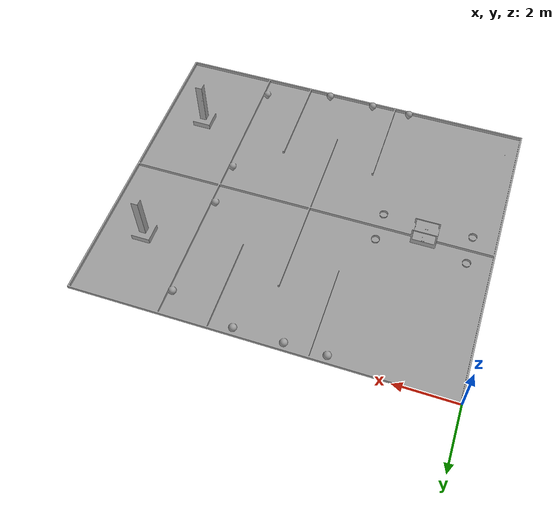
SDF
<?xml version="1.0" ?>
<sdf version="1.6">
  <world name="field">
    <physics name="1ms" type="ignored">
      <max_step_size>0.001</max_step_size>
      <real_time_factor>1.0</real_time_factor>
    </physics>
    <plugin
      filename="gz-sim-physics-system"
      name="gz::sim::systems::Physics">
    </plugin>
    <plugin
      filename="gz-sim-user-commands-system"
      name="gz::sim::systems::UserCommands">
    </plugin>
    <plugin
      filename="gz-sim-scene-broadcaster-system"
      name="gz::sim::systems::SceneBroadcaster">
    </plugin>
    <plugin
      filename="gz-sim-contact-system"
      name="gz::sim::systems::Contact">
    </plugin>
    <plugin
      filename="gz-sim-imu-system"
      name="gz::sim::systems::Imu">
    </plugin>

    <light type="directional" name="sun">
      <cast_shadows>true</cast_shadows>
      <pose>0 0 10 0 0 0</pose>
      <diffuse>0.8 0.8 0.8 1</diffuse>
      <specular>0.2 0.2 0.2 1</specular>
      <attenuation>
        <range>1000</range>
        <constant>0.9</constant>
        <linear>0.01</linear>
        <quadratic>0.001</quadratic>
      </attenuation>
      <direction>-0.5 0.1 -0.9</direction>
    </light>

    <model name="field">
      <static>1</static>
      <pose>0 0 0 0 0 -1.5708</pose>
      <include>
        <uri>model://field</uri>
      </include>
    </model>
  </world>
</sdf>

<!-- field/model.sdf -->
<sdf version="1.6">
  <model name="field">
    <static>true</static>
    <link name="link">
      <collision name="collision">
        <geometry>
          <mesh>
            <scale>1 1 1</scale>
            <uri>model://field/meshes/field.stl</uri>
          </mesh>
        </geometry>
        <surface>
          <friction>
            <ode>
              <mu>1.2</mu>
              <mu2>1.2</mu2>
            </ode>
          </friction>
        </surface>
      </collision>
      <visual name="visual">
        <geometry>
          <mesh>
            <scale>1 1 1</scale>
            <uri>model://field/meshes/field.dae</uri>
          </mesh>
        </geometry>
      </visual>
    </link>
  </model>
</sdf>
